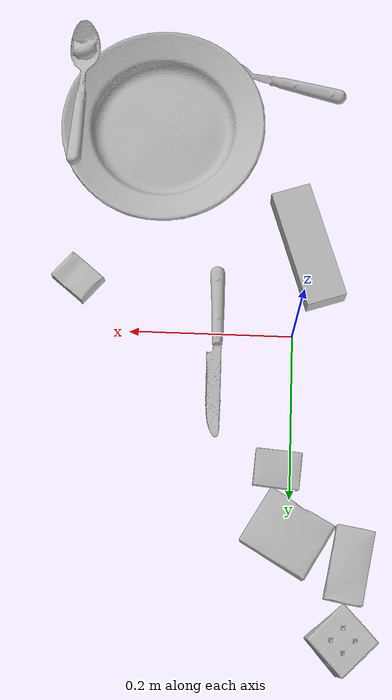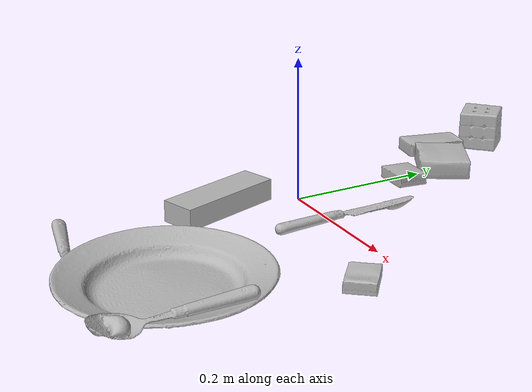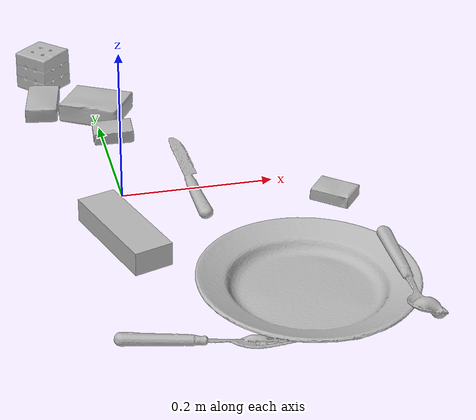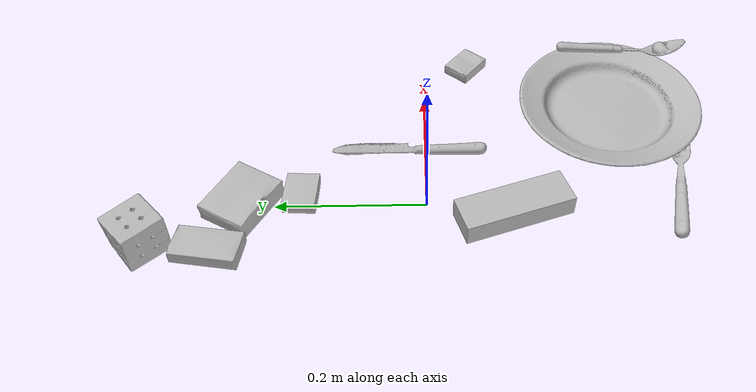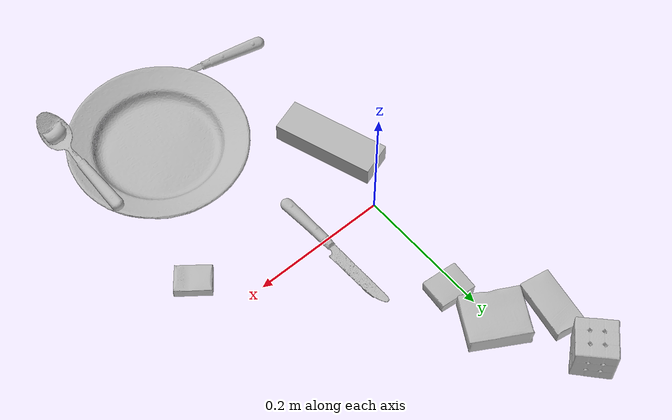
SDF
<sdf version="1.4">
  <world name="default">
    <light name="light1" type="point">
      <pose>0 0 1 0 0 0</pose>
      <diffuse>3 3 3 1</diffuse>
      <specular>3 3 3 1</specular>
    </light>
    <light name="light2" type="point">
      <pose>0 0.5 2 0 0 0</pose>
      <diffuse>1 1 1 1</diffuse>
      <specular>1 1 1 1</specular>
    </light>
    <light name="light3" type="point">
      <pose>0 0.5 2 0 0 0</pose>
      <diffuse>3 3 3 1</diffuse>
      <specular>3 3 3 1</specular>
    </light>
    <scene>
      <ambient>0.7 0.7 0.7</ambient>
    </scene>
    <model name="box11">
      <link name="link_box11">
        <collision name="default">
          <geometry>
            <mesh>
              <uri>model://pudding_box/collision_meshes/collision.obj</uri>
              <scale>0.5 0.5 0.5</scale>
            </mesh>
          </geometry>
          <surface>
            <friction>
              <ode>
                <mu>0.5</mu>
                <mu2>0.5</mu2>
              </ode>
            </friction>
          <contact>
        <ode>
            <max_vel>0</max_vel>
            <min_depth>0.0001</min_depth>
            <kp>1e8</kp>
        </ode>
    </contact></surface>
        </collision>
        <visual name="default">
          <geometry>
            <mesh>
              <uri>model://pudding_box/visual_meshes/visual.dae</uri>
              <scale>0.5 0.5 0.5</scale>
            </mesh>
          </geometry>
        </visual>
        <inertial>
          <mass>0.03786866366863251</mass>
          <pose>0.00024474109522998333 0.00040339428232982755 -0.0002594413817860186 0.005213102272185547 -0.006603797326323335 0.020079825161634604</pose>
          <inertia>
            <ixx>1.0702144e-05</ixx>
            <iyy>7.2004777e-06</iyy>
            <izz>1.580451e-05</izz>
            <ixy>0</ixy>
            <ixz>0</ixz>
            <iyz>0</iyz>
          </inertia>
        </inertial>
      </link>
      <pose>0.014979113824665546 0.16565707325935364 0.00986290629953146 0.02234865527625498 -0.011391632364454526 -1.6530605589350302</pose>
    </model>
    <model name="box12">
      <link name="link_box12">
        <collision name="default">
          <geometry>
            <mesh>
              <uri>model://gelatin_box/collision_meshes/collision.obj</uri>
              <scale>1.0 1.0 1.0</scale>
            </mesh>
          </geometry>
          <surface>
            <friction>
              <ode>
                <mu>0.5</mu>
                <mu2>0.5</mu2>
              </ode>
            </friction>
          <contact>
        <ode>
            <max_vel>0</max_vel>
            <min_depth>0.0001</min_depth>
            <kp>1e8</kp>
        </ode>
    </contact></surface>
        </collision>
        <visual name="default">
          <geometry>
            <mesh>
              <uri>model://gelatin_box/visual_meshes/visual.dae</uri>
              <scale>1.0 1.0 1.0</scale>
            </mesh>
          </geometry>
        </visual>
        <inertial>
          <mass>0.12588495016098022</mass>
          <pose>0.0004319618456065655 0.00011156871914863586 -0.0003640321083366871 -0.0010503723379331838 -0.004755819617810625 0.016440561335826234</pose>
          <inertia>
            <ixx>8.886451e-05</ixx>
            <iyy>6.3475454e-05</iyy>
            <izz>0.00013527159</izz>
            <ixy>0</ixy>
            <ixz>0</ixz>
            <iyz>0</iyz>
          </inertia>
        </inertial>
      </link>
      <pose>0.0027975323610007763 0.24140985310077667 0.015168318524956703 0.005596628792854715 -0.007303640904708517 -2.1041942600340975</pose>
    </model>
    <model name="box13">
      <link name="link_box13">
        <collision name="default">
          <geometry>
            <mesh>
              <uri>model://rubiks_cube/collision_meshes/collision.obj</uri>
              <scale>1.0 1.0 1.0</scale>
            </mesh>
          </geometry>
          <surface>
            <friction>
              <ode>
                <mu>0.5</mu>
                <mu2>0.5</mu2>
              </ode>
            </friction>
          <contact>
        <ode>
            <max_vel>0</max_vel>
            <min_depth>0.0001</min_depth>
            <kp>1e8</kp>
        </ode>
    </contact></surface>
        </collision>
        <visual name="default">
          <geometry>
            <mesh>
              <uri>model://rubiks_cube/visual_meshes/visual.dae</uri>
              <scale>1.0 1.0 1.0</scale>
            </mesh>
          </geometry>
        </visual>
        <inertial>
          <mass>0.24923686683177948</mass>
          <pose>2.6721039830590598e-05 5.256966323941015e-05 -7.264316082000732e-06 -0.05467307197132049 -0.09814178001312306 -0.03445579173896148</pose>
          <inertia>
            <ixx>0.00013772011</ixx>
            <iyy>0.00013707785</iyy>
            <izz>0.00013886133</izz>
            <ixy>0</ixy>
            <ixz>0</ixz>
            <iyz>0</iyz>
          </inertia>
        </inertial>
      </link>
      <pose>-0.058616288006305695 0.3598993420600891 0.02867894247174263 -4.967204612659354e-06 -2.2542860012756466e-06 0.7539375098684824</pose>
    </model>
    <model name="box21">
      <link name="link_box21">
        <collision name="default">
          <geometry>
            <mesh>
              <uri>model://cracker_box/collision_meshes/collision.obj</uri>
              <scale>0.25 0.25 0.25</scale>
            </mesh>
          </geometry>
          <surface>
            <friction>
              <ode>
                <mu>0.5</mu>
                <mu2>0.5</mu2>
              </ode>
            </friction>
          <contact>
        <ode>
            <max_vel>0</max_vel>
            <min_depth>0.0001</min_depth>
            <kp>1e8</kp>
        </ode>
    </contact></surface>
        </collision>
        <visual name="default">
          <geometry>
            <mesh>
              <uri>model://cracker_box/visual_meshes/visual.dae</uri>
              <scale>0.25 0.25 0.25</scale>
            </mesh>
          </geometry>
        </visual>
        <inertial>
          <mass>0.030397580936551094</mass>
          <pose>0.00023660376609768718 6.358562677633017e-05 -0.0004257384280208498 -0.0003162076301819785 -0.011106490531717715 0.002546795235004545</pose>
          <inertia>
            <ixx>4.8323677e-06</ixx>
            <iyy>7.979188e-06</iyy>
            <izz>1.1387034e-05</izz>
            <ixy>0</ixy>
            <ixz>0</ixz>
            <iyz>0</iyz>
          </inertia>
        </inertial>
      </link>
      <pose>0.26673683524131775 -0.06487977504730225 0.009120447561144829 -0.011787867822146365 -0.007367247105004598 2.4506235826474443</pose>
    </model>
    <model name="box22">
      <link name="link_box22">
        <collision name="default">
          <geometry>
            <mesh>
              <uri>model://jenga/collision_meshes/collision.obj</uri>
              <scale>1.0 1.0 1.0</scale>
            </mesh>
          </geometry>
          <surface>
            <friction>
              <ode>
                <mu>0.5</mu>
                <mu2>0.5</mu2>
              </ode>
            </friction>
          <contact>
        <ode>
            <max_vel>0</max_vel>
            <min_depth>0.0001</min_depth>
            <kp>1e8</kp>
        </ode>
    </contact></surface>
        </collision>
        <visual name="default">
          <geometry>
            <mesh>
              <uri>model://jenga/visual_meshes/visual.dae</uri>
              <scale>1.0 1.0 1.0</scale>
            </mesh>
          </geometry>
        </visual>
        <inertial>
          <mass>0.22754427790641785</mass>
          <pose>-2.502855807051674e-07 -0.00010250010382151231 -4.0923401684267446e-05 0.0 -7.34215461761844e-07 0.0</pose>
          <inertia>
            <ixx>6.2967025e-05</ixx>
            <iyy>0.00042666285</iyy>
            <izz>0.00045549884</izz>
            <ixy>0</ixy>
            <ixz>0</ixz>
            <iyz>0</iyz>
          </inertia>
        </inertial>
      </link>
      <pose>-0.017099080607295036 -0.11245471984148026 0.01499999314546585 1.4921114276107712e-09 -1.8061193988630578e-10 -1.2526539023110979</pose>
    </model>
    <model name="box23">
      <link name="link_box23">
        <collision name="default">
          <geometry>
            <mesh>
              <uri>model://sugar_box/collision_meshes/collision.obj</uri>
              <scale>0.5 0.5 0.5</scale>
            </mesh>
          </geometry>
          <surface>
            <friction>
              <ode>
                <mu>0.5</mu>
                <mu2>0.5</mu2>
              </ode>
            </friction>
          <contact>
        <ode>
            <max_vel>0</max_vel>
            <min_depth>0.0001</min_depth>
            <kp>1e8</kp>
        </ode>
    </contact></surface>
        </collision>
        <visual name="default">
          <geometry>
            <mesh>
              <uri>model://sugar_box/visual_meshes/visual.dae</uri>
              <scale>0.5 0.5 0.5</scale>
            </mesh>
          </geometry>
        </visual>
        <inertial>
          <mass>0.07313712686300278</mass>
          <pose>0.0005171863595023751 1.924554817378521e-05 -0.00018182402709499002 -0.0004046264167799433 0.0010506636386831275 0.0026153785560066108</pose>
          <inertia>
            <ixx>1.5234412e-05</ixx>
            <iyy>4.924075e-05</iyy>
            <izz>5.894705e-05</izz>
            <ixy>0</ixy>
            <ixz>0</ixz>
            <iyz>0</iyz>
          </inertia>
        </inertial>
      </link>
      <pose>-0.07014542818069458 0.27467912435531616 0.01139930821955204 0.0007750039709970075 -0.02343285899972177 -1.7485086762856135</pose>
    </model>
    <model name="plate1">
      <link name="link_plate1">
        <collision name="default">
          <geometry>
            <mesh>
              <uri>model://plate/collision_meshes/collision.obj</uri>
              <scale>1.0 1.0 1.0</scale>
            </mesh>
          </geometry>
          <surface>
            <friction>
              <ode>
                <mu>0.5</mu>
                <mu2>0.5</mu2>
              </ode>
            </friction>
          <contact>
        <ode>
            <max_vel>0</max_vel>
            <min_depth>0.0001</min_depth>
            <kp>1e8</kp>
        </ode>
    </contact></surface>
        </collision>
        <visual name="default">
          <geometry>
            <mesh>
              <uri>model://plate/visual_meshes/visual.dae</uri>
              <scale>1.0 1.0 1.0</scale>
            </mesh>
          </geometry>
        </visual>
        <inertial>
          <mass>0.2069685012102127</mass>
          <pose>-0.0006044612964615226 0.0002782598603516817 -0.0010561986127868295 0.0022188143427174073 -0.003225461822968263 0.4526007532235607</pose>
          <inertia>
            <ixx>0.0009682027</ixx>
            <iyy>0.0009589421</iyy>
            <izz>0.0018936595</izz>
            <ixy>0</ixy>
            <ixz>0</ixz>
            <iyz>0</iyz>
          </inertia>
        </inertial>
      </link>
      <pose>0.16959966719150543 -0.26885566115379333 0.013733009807765484 -1.267306247329052e-09 4.2339097306252836e-08 -2.8422240004708144</pose>
    </model>
    <model name="silverware1">
      <link name="link_silverware1">
        <collision name="default">
          <geometry>
            <mesh>
              <uri>model://knife/collision_meshes/collision.obj</uri>
              <scale>1.0 1.0 1.0</scale>
            </mesh>
          </geometry>
          <surface>
            <friction>
              <ode>
                <mu>0.5</mu>
                <mu2>0.5</mu2>
              </ode>
            </friction>
          <contact>
        <ode>
            <max_vel>0</max_vel>
            <min_depth>0.0001</min_depth>
            <kp>1e8</kp>
        </ode>
    </contact></surface>
        </collision>
        <visual name="default">
          <geometry>
            <mesh>
              <uri>model://knife/visual_meshes/visual.dae</uri>
              <scale>1.0 1.0 1.0</scale>
            </mesh>
          </geometry>
        </visual>
        <inertial>
          <mass>0.01404397189617157</mass>
          <pose>-0.02378525771200657 0.0015275126788765192 5.0620223191799596e-05 0.07306830572090188 0.017248424252748085 -0.00740981553779352</pose>
          <inertia>
            <ixx>3.9862488e-07</ixx>
            <iyy>5.3954667e-05</iyy>
            <izz>5.408303e-05</izz>
            <ixy>0</ixy>
            <ixz>0</ixz>
            <iyz>0</iyz>
          </inertia>
        </inertial>
      </link>
      <pose>0.09420919418334961 0.021833674982190132 0.007946574129164219 -0.023839665807842476 -0.01454322791413774 1.5757044931421291</pose>
    </model>
    <model name="silverware2">
      <link name="link_silverware2">
        <collision name="default">
          <geometry>
            <mesh>
              <uri>model://fork/collision_meshes/collision.obj</uri>
              <scale>1.0 1.0 1.0</scale>
            </mesh>
          </geometry>
          <surface>
            <friction>
              <ode>
                <mu>0.5</mu>
                <mu2>0.5</mu2>
              </ode>
            </friction>
          <contact>
        <ode>
            <max_vel>0</max_vel>
            <min_depth>0.0001</min_depth>
            <kp>1e8</kp>
        </ode>
    </contact></surface>
        </collision>
        <visual name="default">
          <geometry>
            <mesh>
              <uri>model://fork/visual_meshes/visual.dae</uri>
              <scale>1.0 1.0 1.0</scale>
            </mesh>
          </geometry>
        </visual>
        <inertial>
          <mass>0.012992284260690212</mass>
          <pose>-0.029570037499070168 0.0004658822435885668 0.00032188609475269914 -0.013552170713958372 -0.010977837352032947 0.014453895109592321</pose>
          <inertia>
            <ixx>4.5545306e-07</ixx>
            <iyy>3.3919117e-05</iyy>
            <izz>3.4122822e-05</izz>
            <ixy>0</ixy>
            <ixz>0</ixz>
            <iyz>0</iyz>
          </inertia>
        </inertial>
      </link>
      <pose>0.031045595183968544 -0.3433527946472168 0.005746012553572655 -0.190855171563415 0.02410393643677585 -0.23589222145844468</pose>
    </model>
    <model name="silverware3">
      <link name="link_silverware3">
        <collision name="default">
          <geometry>
            <mesh>
              <uri>model://spoon/collision_meshes/collision.obj</uri>
              <scale>1.0 1.0 1.0</scale>
            </mesh>
          </geometry>
          <surface>
            <friction>
              <ode>
                <mu>0.5</mu>
                <mu2>0.5</mu2>
              </ode>
            </friction>
          <contact>
        <ode>
            <max_vel>0</max_vel>
            <min_depth>0.0001</min_depth>
            <kp>1e8</kp>
        </ode>
    </contact></surface>
        </collision>
        <visual name="default">
          <geometry>
            <mesh>
              <uri>model://spoon/visual_meshes/visual.dae</uri>
              <scale>1.0 1.0 1.0</scale>
            </mesh>
          </geometry>
        </visual>
        <inertial>
          <mass>0.01562128309160471</mass>
          <pose>-0.0055263228714466095 -0.0016034174477681518 -0.0007271653157658875 0.03521671072610287 -0.03906584128735088 0.006150609582760137</pose>
          <inertia>
            <ixx>8.688809e-07</ixx>
            <iyy>5.9438455e-05</iyy>
            <izz>5.986695e-05</izz>
            <ixy>0</ixy>
            <ixz>0</ixz>
            <iyz>0</iyz>
          </inertia>
        </inertial>
      </link>
      <pose>0.27853134274482727 -0.30445703864097595 0.032308340072631836 -0.27991707961070833 0.036329132895560196 -1.6110386055971346</pose>
    </model>
  <physics type="ode">
      <max_contacts>50</max_contacts>
      <ode>
        <solver>
          <type>quick</type>
          <iters>75</iters>
        </solver>
        <constraints>
          <contact_max_correcting_vel>0</contact_max_correcting_vel>
          <contact_surface_layer>0</contact_surface_layer>
        </constraints>
      </ode>
    </physics></world>
</sdf>
